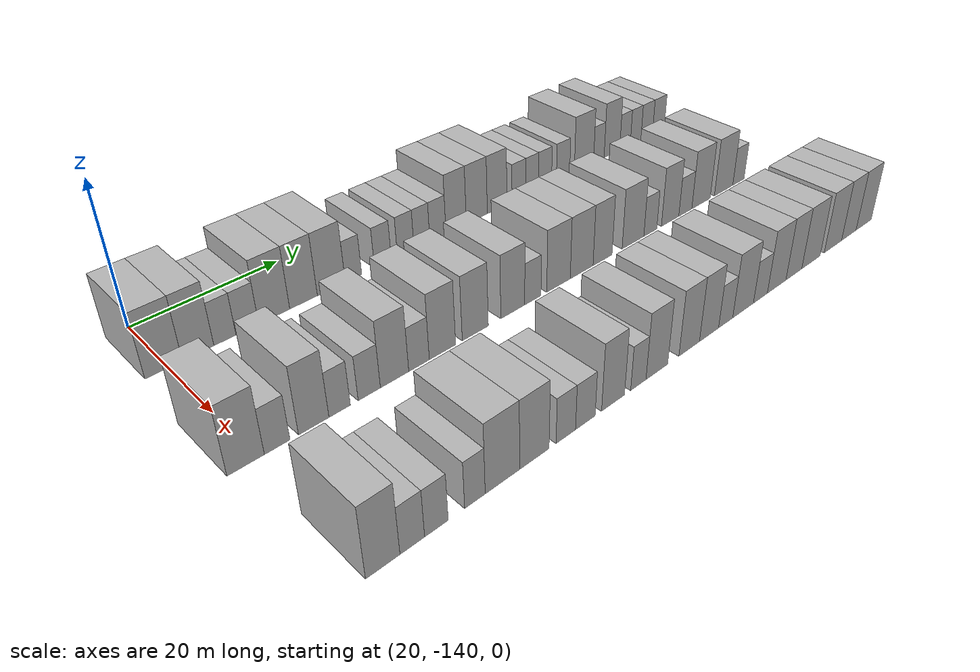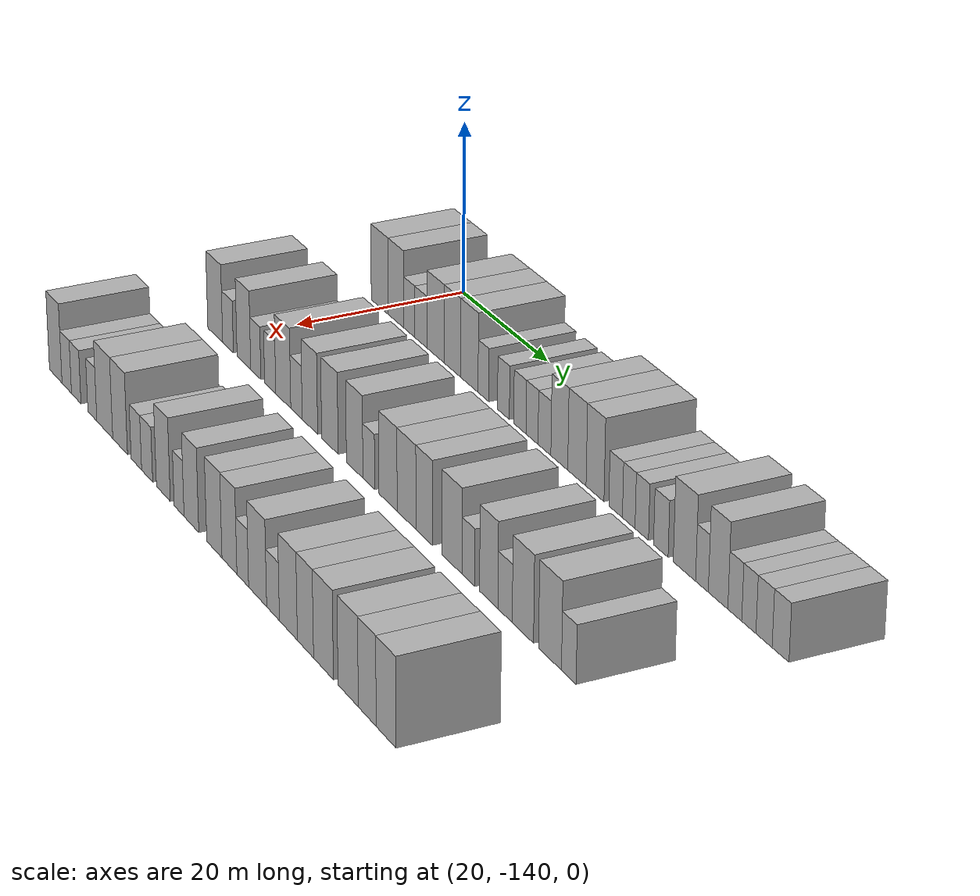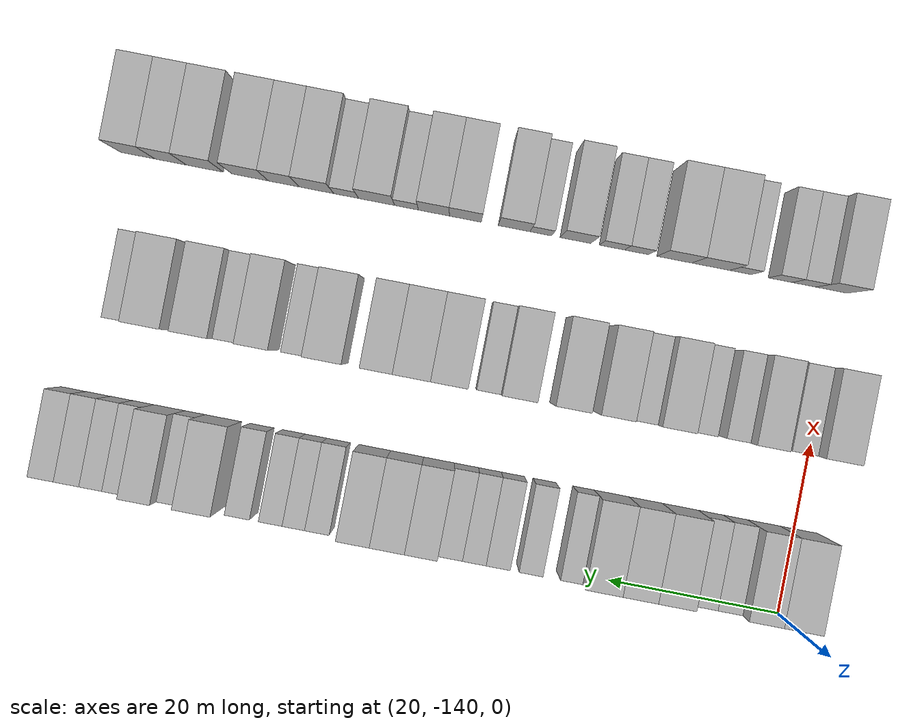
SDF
<sdf version="1.6">
 <world name="default">
  <model name="building_24">
   <static>1</static>
   <pose>25.0000 -140.4997 0 0.000000 0.000000 0.000000</pose>
   <link name="link">
    <pose>0 0 4.50 0 0 0</pose>
    <collision name="collision"><geometry><box><size>10.0000 4.4178 9.0000</size></box></geometry></collision>
    <visual name="visual">
     <cast_shadows>0</cast_shadows>
     <geometry><box><size>10.0000 4.4178 9.0000</size></box></geometry>
     <material>
      <script>
       <uri>model://HANNAS_wall/materials/scripts</uri>
       <uri>model://HANNAS_wall/materials/textures</uri>
       <name>vrc/HANNAS_wall</name>
      </script>
     </material>
    </visual>
   </link>
  </model>
  <model name="building_25">
   <static>1</static>
   <pose>25.0000 -136.3482 0 0.000000 0.000000 0.000000</pose>
   <link name="link">
    <pose>0 0 4.50 0 0 0</pose>
    <collision name="collision"><geometry><box><size>10.0000 3.8852 9.0000</size></box></geometry></collision>
    <visual name="visual">
     <cast_shadows>0</cast_shadows>
     <geometry><box><size>10.0000 3.8852 9.0000</size></box></geometry>
     <material>
      <script>
       <uri>model://HANNAS_wall/materials/scripts</uri>
       <uri>model://HANNAS_wall/materials/textures</uri>
       <name>vrc/HANNAS_wall</name>
      </script>
     </material>
    </visual>
   </link>
  </model>
  <model name="building_26">
   <static>1</static>
   <pose>25.0000 -132.9980 0 0.000000 0.000000 0.000000</pose>
   <link name="link">
    <pose>0 0 3.00 0 0 0</pose>
    <collision name="collision"><geometry><box><size>10.0000 2.8153 6.0000</size></box></geometry></collision>
    <visual name="visual">
     <cast_shadows>0</cast_shadows>
     <geometry><box><size>10.0000 2.8153 6.0000</size></box></geometry>
     <material>
      <script>
       <uri>model://HANNAS_wall/materials/scripts</uri>
       <uri>model://HANNAS_wall/materials/textures</uri>
       <name>vrc/HANNAS_wall</name>
      </script>
     </material>
    </visual>
   </link>
  </model>
  <model name="building_27">
   <static>1</static>
   <pose>25.0000 -130.0991 0 0.000000 0.000000 0.000000</pose>
   <link name="link">
    <pose>0 0 3.00 0 0 0</pose>
    <collision name="collision"><geometry><box><size>10.0000 2.9823 6.0000</size></box></geometry></collision>
    <visual name="visual">
     <cast_shadows>0</cast_shadows>
     <geometry><box><size>10.0000 2.9823 6.0000</size></box></geometry>
     <material>
      <script>
       <uri>model://HANNAS_wall/materials/scripts</uri>
       <uri>model://HANNAS_wall/materials/textures</uri>
       <name>vrc/HANNAS_wall</name>
      </script>
     </material>
    </visual>
   </link>
  </model>
  <model name="building_28">
   <static>1</static>
   <pose>25.0000 -126.4854 0 0.000000 0.000000 0.000000</pose>
   <link name="link">
    <pose>0 0 4.50 0 0 0</pose>
    <collision name="collision"><geometry><box><size>10.0000 4.2451 9.0000</size></box></geometry></collision>
    <visual name="visual">
     <cast_shadows>0</cast_shadows>
     <geometry><box><size>10.0000 4.2451 9.0000</size></box></geometry>
     <material>
      <script>
       <uri>model://HANNAS_wall/materials/scripts</uri>
       <uri>model://HANNAS_wall/materials/textures</uri>
       <name>vrc/HANNAS_wall</name>
      </script>
     </material>
    </visual>
   </link>
  </model>
  <model name="building_29">
   <static>1</static>
   <pose>25.0000 -122.3952 0 0.000000 0.000000 0.000000</pose>
   <link name="link">
    <pose>0 0 4.50 0 0 0</pose>
    <collision name="collision"><geometry><box><size>10.0000 3.9354 9.0000</size></box></geometry></collision>
    <visual name="visual">
     <cast_shadows>0</cast_shadows>
     <geometry><box><size>10.0000 3.9354 9.0000</size></box></geometry>
     <material>
      <script>
       <uri>model://HANNAS_wall/materials/scripts</uri>
       <uri>model://HANNAS_wall/materials/textures</uri>
       <name>vrc/HANNAS_wall</name>
      </script>
     </material>
    </visual>
   </link>
  </model>
  <model name="building_30">
   <static>1</static>
   <pose>25.0000 -118.3647 0 0.000000 0.000000 0.000000</pose>
   <link name="link">
    <pose>0 0 4.50 0 0 0</pose>
    <collision name="collision"><geometry><box><size>10.0000 4.1256 9.0000</size></box></geometry></collision>
    <visual name="visual">
     <cast_shadows>0</cast_shadows>
     <geometry><box><size>10.0000 4.1256 9.0000</size></box></geometry>
     <material>
      <script>
       <uri>model://HANNAS_wall/materials/scripts</uri>
       <uri>model://HANNAS_wall/materials/textures</uri>
       <name>vrc/HANNAS_wall</name>
      </script>
     </material>
    </visual>
   </link>
  </model>
  <model name="building_31">
   <static>1</static>
   <pose>25.0000 -115.0467 0 0.000000 0.000000 0.000000</pose>
   <link name="link">
    <pose>0 0 3.00 0 0 0</pose>
    <collision name="collision"><geometry><box><size>10.0000 2.5103 6.0000</size></box></geometry></collision>
    <visual name="visual">
     <cast_shadows>0</cast_shadows>
     <geometry><box><size>10.0000 2.5103 6.0000</size></box></geometry>
     <material>
      <script>
       <uri>model://HANNAS_wall/materials/scripts</uri>
       <uri>model://HANNAS_wall/materials/textures</uri>
       <name>vrc/HANNAS_wall</name>
      </script>
     </material>
    </visual>
   </link>
  </model>
  <model name="building_32">
   <static>1</static>
   <pose>25.0000 -110.4434 0 0.000000 0.000000 0.000000</pose>
   <link name="link">
    <pose>0 0 3.00 0 0 0</pose>
    <collision name="collision"><geometry><box><size>10.0000 2.6963 6.0000</size></box></geometry></collision>
    <visual name="visual">
     <cast_shadows>0</cast_shadows>
     <geometry><box><size>10.0000 2.6963 6.0000</size></box></geometry>
     <material>
      <script>
       <uri>model://HANNAS_wall/materials/scripts</uri>
       <uri>model://HANNAS_wall/materials/textures</uri>
       <name>vrc/HANNAS_wall</name>
      </script>
     </material>
    </visual>
   </link>
  </model>
  <model name="building_33">
   <static>1</static>
   <pose>25.0000 -106.7267 0 0.000000 0.000000 0.000000</pose>
   <link name="link">
    <pose>0 0 3.00 0 0 0</pose>
    <collision name="collision"><geometry><box><size>10.0000 2.7371 6.0000</size></box></geometry></collision>
    <visual name="visual">
     <cast_shadows>0</cast_shadows>
     <geometry><box><size>10.0000 2.7371 6.0000</size></box></geometry>
     <material>
      <script>
       <uri>model://HANNAS_wall/materials/scripts</uri>
       <uri>model://HANNAS_wall/materials/textures</uri>
       <name>vrc/HANNAS_wall</name>
      </script>
     </material>
    </visual>
   </link>
  </model>
  <model name="building_34">
   <static>1</static>
   <pose>25.0000 -104.0174 0 0.000000 0.000000 0.000000</pose>
   <link name="link">
    <pose>0 0 3.00 0 0 0</pose>
    <collision name="collision"><geometry><box><size>10.0000 2.6816 6.0000</size></box></geometry></collision>
    <visual name="visual">
     <cast_shadows>0</cast_shadows>
     <geometry><box><size>10.0000 2.6816 6.0000</size></box></geometry>
     <material>
      <script>
       <uri>model://HANNAS_wall/materials/scripts</uri>
       <uri>model://HANNAS_wall/materials/textures</uri>
       <name>vrc/HANNAS_wall</name>
      </script>
     </material>
    </visual>
   </link>
  </model>
  <model name="building_35">
   <static>1</static>
   <pose>25.0000 -101.2738 0 0.000000 0.000000 0.000000</pose>
   <link name="link">
    <pose>0 0 3.00 0 0 0</pose>
    <collision name="collision"><geometry><box><size>10.0000 2.8056 6.0000</size></box></geometry></collision>
    <visual name="visual">
     <cast_shadows>0</cast_shadows>
     <geometry><box><size>10.0000 2.8056 6.0000</size></box></geometry>
     <material>
      <script>
       <uri>model://HANNAS_wall/materials/scripts</uri>
       <uri>model://HANNAS_wall/materials/textures</uri>
       <name>vrc/HANNAS_wall</name>
      </script>
     </material>
    </visual>
   </link>
  </model>
  <model name="building_36">
   <static>1</static>
   <pose>25.0000 -98.0478 0 0.000000 0.000000 0.000000</pose>
   <link name="link">
    <pose>0 0 4.50 0 0 0</pose>
    <collision name="collision"><geometry><box><size>10.0000 3.6464 9.0000</size></box></geometry></collision>
    <visual name="visual">
     <cast_shadows>0</cast_shadows>
     <geometry><box><size>10.0000 3.6464 9.0000</size></box></geometry>
     <material>
      <script>
       <uri>model://HANNAS_wall/materials/scripts</uri>
       <uri>model://HANNAS_wall/materials/textures</uri>
       <name>vrc/HANNAS_wall</name>
      </script>
     </material>
    </visual>
   </link>
  </model>
  <model name="building_37">
   <static>1</static>
   <pose>25.0000 -94.2791 0 0.000000 0.000000 0.000000</pose>
   <link name="link">
    <pose>0 0 4.50 0 0 0</pose>
    <collision name="collision"><geometry><box><size>10.0000 3.8909 9.0000</size></box></geometry></collision>
    <visual name="visual">
     <cast_shadows>0</cast_shadows>
     <geometry><box><size>10.0000 3.8909 9.0000</size></box></geometry>
     <material>
      <script>
       <uri>model://HANNAS_wall/materials/scripts</uri>
       <uri>model://HANNAS_wall/materials/textures</uri>
       <name>vrc/HANNAS_wall</name>
      </script>
     </material>
    </visual>
   </link>
  </model>
  <model name="building_38">
   <static>1</static>
   <pose>25.0000 -90.4630 0 0.000000 0.000000 0.000000</pose>
   <link name="link">
    <pose>0 0 4.50 0 0 0</pose>
    <collision name="collision"><geometry><box><size>10.0000 3.7415 9.0000</size></box></geometry></collision>
    <visual name="visual">
     <cast_shadows>0</cast_shadows>
     <geometry><box><size>10.0000 3.7415 9.0000</size></box></geometry>
     <material>
      <script>
       <uri>model://HANNAS_wall/materials/scripts</uri>
       <uri>model://HANNAS_wall/materials/textures</uri>
       <name>vrc/HANNAS_wall</name>
      </script>
     </material>
    </visual>
   </link>
  </model>
  <model name="building_39">
   <static>1</static>
   <pose>25.0000 -86.2016 0 0.000000 0.000000 0.000000</pose>
   <link name="link">
    <pose>0 0 3.00 0 0 0</pose>
    <collision name="collision"><geometry><box><size>10.0000 2.7812 6.0000</size></box></geometry></collision>
    <visual name="visual">
     <cast_shadows>0</cast_shadows>
     <geometry><box><size>10.0000 2.7812 6.0000</size></box></geometry>
     <material>
      <script>
       <uri>model://HANNAS_wall/materials/scripts</uri>
       <uri>model://HANNAS_wall/materials/textures</uri>
       <name>vrc/HANNAS_wall</name>
      </script>
     </material>
    </visual>
   </link>
  </model>
  <model name="building_40">
   <static>1</static>
   <pose>25.0000 -83.5370 0 0.000000 0.000000 0.000000</pose>
   <link name="link">
    <pose>0 0 3.00 0 0 0</pose>
    <collision name="collision"><geometry><box><size>10.0000 2.5480 6.0000</size></box></geometry></collision>
    <visual name="visual">
     <cast_shadows>0</cast_shadows>
     <geometry><box><size>10.0000 2.5480 6.0000</size></box></geometry>
     <material>
      <script>
       <uri>model://HANNAS_wall/materials/scripts</uri>
       <uri>model://HANNAS_wall/materials/textures</uri>
       <name>vrc/HANNAS_wall</name>
      </script>
     </material>
    </visual>
   </link>
  </model>
  <model name="building_41">
   <static>1</static>
   <pose>25.0000 -80.9181 0 0.000000 0.000000 0.000000</pose>
   <link name="link">
    <pose>0 0 3.00 0 0 0</pose>
    <collision name="collision"><geometry><box><size>10.0000 2.6897 6.0000</size></box></geometry></collision>
    <visual name="visual">
     <cast_shadows>0</cast_shadows>
     <geometry><box><size>10.0000 2.6897 6.0000</size></box></geometry>
     <material>
      <script>
       <uri>model://HANNAS_wall/materials/scripts</uri>
       <uri>model://HANNAS_wall/materials/textures</uri>
       <name>vrc/HANNAS_wall</name>
      </script>
     </material>
    </visual>
   </link>
  </model>
  <model name="building_42">
   <static>1</static>
   <pose>25.0000 -77.1449 0 0.000000 0.000000 0.000000</pose>
   <link name="link">
    <pose>0 0 3.00 0 0 0</pose>
    <collision name="collision"><geometry><box><size>10.0000 2.8566 6.0000</size></box></geometry></collision>
    <visual name="visual">
     <cast_shadows>0</cast_shadows>
     <geometry><box><size>10.0000 2.8566 6.0000</size></box></geometry>
     <material>
      <script>
       <uri>model://HANNAS_wall/materials/scripts</uri>
       <uri>model://HANNAS_wall/materials/textures</uri>
       <name>vrc/HANNAS_wall</name>
      </script>
     </material>
    </visual>
   </link>
  </model>
  <model name="building_43">
   <static>1</static>
   <pose>25.0000 -72.5755 0 0.000000 0.000000 0.000000</pose>
   <link name="link">
    <pose>0 0 4.50 0 0 0</pose>
    <collision name="collision"><geometry><box><size>10.0000 4.2822 9.0000</size></box></geometry></collision>
    <visual name="visual">
     <cast_shadows>0</cast_shadows>
     <geometry><box><size>10.0000 4.2822 9.0000</size></box></geometry>
     <material>
      <script>
       <uri>model://HANNAS_wall/materials/scripts</uri>
       <uri>model://HANNAS_wall/materials/textures</uri>
       <name>vrc/HANNAS_wall</name>
      </script>
     </material>
    </visual>
   </link>
  </model>
  <model name="building_44">
   <static>1</static>
   <pose>25.0000 -69.2297 0 0.000000 0.000000 0.000000</pose>
   <link name="link">
    <pose>0 0 3.00 0 0 0</pose>
    <collision name="collision"><geometry><box><size>10.0000 2.4093 6.0000</size></box></geometry></collision>
    <visual name="visual">
     <cast_shadows>0</cast_shadows>
     <geometry><box><size>10.0000 2.4093 6.0000</size></box></geometry>
     <material>
      <script>
       <uri>model://HANNAS_wall/materials/scripts</uri>
       <uri>model://HANNAS_wall/materials/textures</uri>
       <name>vrc/HANNAS_wall</name>
      </script>
     </material>
    </visual>
   </link>
  </model>
  <model name="building_45">
   <static>1</static>
   <pose>25.0000 -66.2051 0 0.000000 0.000000 0.000000</pose>
   <link name="link">
    <pose>0 0 4.50 0 0 0</pose>
    <collision name="collision"><geometry><box><size>10.0000 3.6398 9.0000</size></box></geometry></collision>
    <visual name="visual">
     <cast_shadows>0</cast_shadows>
     <geometry><box><size>10.0000 3.6398 9.0000</size></box></geometry>
     <material>
      <script>
       <uri>model://HANNAS_wall/materials/scripts</uri>
       <uri>model://HANNAS_wall/materials/textures</uri>
       <name>vrc/HANNAS_wall</name>
      </script>
     </material>
    </visual>
   </link>
  </model>
  <model name="building_46">
   <static>1</static>
   <pose>25.0000 -63.1187 0 0.000000 0.000000 0.000000</pose>
   <link name="link">
    <pose>0 0 3.00 0 0 0</pose>
    <collision name="collision"><geometry><box><size>10.0000 2.5330 6.0000</size></box></geometry></collision>
    <visual name="visual">
     <cast_shadows>0</cast_shadows>
     <geometry><box><size>10.0000 2.5330 6.0000</size></box></geometry>
     <material>
      <script>
       <uri>model://HANNAS_wall/materials/scripts</uri>
       <uri>model://HANNAS_wall/materials/textures</uri>
       <name>vrc/HANNAS_wall</name>
      </script>
     </material>
    </visual>
   </link>
  </model>
  <model name="building_47">
   <static>1</static>
   <pose>25.0000 -60.5588 0 0.000000 0.000000 0.000000</pose>
   <link name="link">
    <pose>0 0 3.00 0 0 0</pose>
    <collision name="collision"><geometry><box><size>10.0000 2.5867 6.0000</size></box></geometry></collision>
    <visual name="visual">
     <cast_shadows>0</cast_shadows>
     <geometry><box><size>10.0000 2.5867 6.0000</size></box></geometry>
     <material>
      <script>
       <uri>model://HANNAS_wall/materials/scripts</uri>
       <uri>model://HANNAS_wall/materials/textures</uri>
       <name>vrc/HANNAS_wall</name>
      </script>
     </material>
    </visual>
   </link>
  </model>
  <model name="building_48">
   <static>1</static>
   <pose>25.0000 -57.8193 0 0.000000 0.000000 0.000000</pose>
   <link name="link">
    <pose>0 0 3.00 0 0 0</pose>
    <collision name="collision"><geometry><box><size>10.0000 2.8924 6.0000</size></box></geometry></collision>
    <visual name="visual">
     <cast_shadows>0</cast_shadows>
     <geometry><box><size>10.0000 2.8924 6.0000</size></box></geometry>
     <material>
      <script>
       <uri>model://HANNAS_wall/materials/scripts</uri>
       <uri>model://HANNAS_wall/materials/textures</uri>
       <name>vrc/HANNAS_wall</name>
      </script>
     </material>
    </visual>
   </link>
  </model>
  <model name="building_49">
   <static>1</static>
   <pose>25.0000 -54.8866 0 0.000000 0.000000 0.000000</pose>
   <link name="link">
    <pose>0 0 3.00 0 0 0</pose>
    <collision name="collision"><geometry><box><size>10.0000 2.9731 6.0000</size></box></geometry></collision>
    <visual name="visual">
     <cast_shadows>0</cast_shadows>
     <geometry><box><size>10.0000 2.9731 6.0000</size></box></geometry>
     <material>
      <script>
       <uri>model://HANNAS_wall/materials/scripts</uri>
       <uri>model://HANNAS_wall/materials/textures</uri>
       <name>vrc/HANNAS_wall</name>
      </script>
     </material>
    </visual>
   </link>
  </model>
  <model name="building_142">
   <static>1</static>
   <pose>44.0000 -141.3396 0 0.000000 0.000000 0.000000</pose>
   <link name="link">
    <pose>0 0 4.50 0 0 0</pose>
    <collision name="collision"><geometry><box><size>10.0000 4.1353 9.0000</size></box></geometry></collision>
    <visual name="visual">
     <cast_shadows>0</cast_shadows>
     <geometry><box><size>10.0000 4.1353 9.0000</size></box></geometry>
     <material>
      <script>
       <uri>model://HANNAS_wall/materials/scripts</uri>
       <uri>model://HANNAS_wall/materials/textures</uri>
       <name>vrc/HANNAS_wall</name>
      </script>
     </material>
    </visual>
   </link>
  </model>
  <model name="building_143">
   <static>1</static>
   <pose>44.0000 -137.7977 0 0.000000 0.000000 0.000000</pose>
   <link name="link">
    <pose>0 0 3.00 0 0 0</pose>
    <collision name="collision"><geometry><box><size>10.0000 2.9484 6.0000</size></box></geometry></collision>
    <visual name="visual">
     <cast_shadows>0</cast_shadows>
     <geometry><box><size>10.0000 2.9484 6.0000</size></box></geometry>
     <material>
      <script>
       <uri>model://HANNAS_wall/materials/scripts</uri>
       <uri>model://HANNAS_wall/materials/textures</uri>
       <name>vrc/HANNAS_wall</name>
      </script>
     </material>
    </visual>
   </link>
  </model>
  <model name="building_144">
   <static>1</static>
   <pose>44.0000 -133.4770 0 0.000000 0.000000 0.000000</pose>
   <link name="link">
    <pose>0 0 4.50 0 0 0</pose>
    <collision name="collision"><geometry><box><size>10.0000 3.6932 9.0000</size></box></geometry></collision>
    <visual name="visual">
     <cast_shadows>0</cast_shadows>
     <geometry><box><size>10.0000 3.6932 9.0000</size></box></geometry>
     <material>
      <script>
       <uri>model://HANNAS_wall/materials/scripts</uri>
       <uri>model://HANNAS_wall/materials/textures</uri>
       <name>vrc/HANNAS_wall</name>
      </script>
     </material>
    </visual>
   </link>
  </model>
  <model name="building_145">
   <static>1</static>
   <pose>44.0000 -130.2833 0 0.000000 0.000000 0.000000</pose>
   <link name="link">
    <pose>0 0 3.00 0 0 0</pose>
    <collision name="collision"><geometry><box><size>10.0000 2.6942 6.0000</size></box></geometry></collision>
    <visual name="visual">
     <cast_shadows>0</cast_shadows>
     <geometry><box><size>10.0000 2.6942 6.0000</size></box></geometry>
     <material>
      <script>
       <uri>model://HANNAS_wall/materials/scripts</uri>
       <uri>model://HANNAS_wall/materials/textures</uri>
       <name>vrc/HANNAS_wall</name>
      </script>
     </material>
    </visual>
   </link>
  </model>
  <model name="building_146">
   <static>1</static>
   <pose>44.0000 -126.4742 0 0.000000 0.000000 0.000000</pose>
   <link name="link">
    <pose>0 0 3.00 0 0 0</pose>
    <collision name="collision"><geometry><box><size>10.0000 2.9239 6.0000</size></box></geometry></collision>
    <visual name="visual">
     <cast_shadows>0</cast_shadows>
     <geometry><box><size>10.0000 2.9239 6.0000</size></box></geometry>
     <material>
      <script>
       <uri>model://HANNAS_wall/materials/scripts</uri>
       <uri>model://HANNAS_wall/materials/textures</uri>
       <name>vrc/HANNAS_wall</name>
      </script>
     </material>
    </visual>
   </link>
  </model>
  <model name="building_147">
   <static>1</static>
   <pose>44.0000 -123.0789 0 0.000000 0.000000 0.000000</pose>
   <link name="link">
    <pose>0 0 4.50 0 0 0</pose>
    <collision name="collision"><geometry><box><size>10.0000 3.8668 9.0000</size></box></geometry></collision>
    <visual name="visual">
     <cast_shadows>0</cast_shadows>
     <geometry><box><size>10.0000 3.8668 9.0000</size></box></geometry>
     <material>
      <script>
       <uri>model://HANNAS_wall/materials/scripts</uri>
       <uri>model://HANNAS_wall/materials/textures</uri>
       <name>vrc/HANNAS_wall</name>
      </script>
     </material>
    </visual>
   </link>
  </model>
  <model name="building_148">
   <static>1</static>
   <pose>44.0000 -119.6869 0 0.000000 0.000000 0.000000</pose>
   <link name="link">
    <pose>0 0 3.00 0 0 0</pose>
    <collision name="collision"><geometry><box><size>10.0000 2.9173 6.0000</size></box></geometry></collision>
    <visual name="visual">
     <cast_shadows>0</cast_shadows>
     <geometry><box><size>10.0000 2.9173 6.0000</size></box></geometry>
     <material>
      <script>
       <uri>model://HANNAS_wall/materials/scripts</uri>
       <uri>model://HANNAS_wall/materials/textures</uri>
       <name>vrc/HANNAS_wall</name>
      </script>
     </material>
    </visual>
   </link>
  </model>
  <model name="building_149">
   <static>1</static>
   <pose>44.0000 -116.2940 0 0.000000 0.000000 0.000000</pose>
   <link name="link">
    <pose>0 0 4.50 0 0 0</pose>
    <collision name="collision"><geometry><box><size>10.0000 3.8684 9.0000</size></box></geometry></collision>
    <visual name="visual">
     <cast_shadows>0</cast_shadows>
     <geometry><box><size>10.0000 3.8684 9.0000</size></box></geometry>
     <material>
      <script>
       <uri>model://HANNAS_wall/materials/scripts</uri>
       <uri>model://HANNAS_wall/materials/textures</uri>
       <name>vrc/HANNAS_wall</name>
      </script>
     </material>
    </visual>
   </link>
  </model>
  <model name="building_150">
   <static>1</static>
   <pose>44.0000 -111.3414 0 0.000000 0.000000 0.000000</pose>
   <link name="link">
    <pose>0 0 4.50 0 0 0</pose>
    <collision name="collision"><geometry><box><size>10.0000 4.0368 9.0000</size></box></geometry></collision>
    <visual name="visual">
     <cast_shadows>0</cast_shadows>
     <geometry><box><size>10.0000 4.0368 9.0000</size></box></geometry>
     <material>
      <script>
       <uri>model://HANNAS_wall/materials/scripts</uri>
       <uri>model://HANNAS_wall/materials/textures</uri>
       <name>vrc/HANNAS_wall</name>
      </script>
     </material>
    </visual>
   </link>
  </model>
  <model name="building_151">
   <static>1</static>
   <pose>44.0000 -105.3486 0 0.000000 0.000000 0.000000</pose>
   <link name="link">
    <pose>0 0 4.50 0 0 0</pose>
    <collision name="collision"><geometry><box><size>10.0000 3.9489 9.0000</size></box></geometry></collision>
    <visual name="visual">
     <cast_shadows>0</cast_shadows>
     <geometry><box><size>10.0000 3.9489 9.0000</size></box></geometry>
     <material>
      <script>
       <uri>model://HANNAS_wall/materials/scripts</uri>
       <uri>model://HANNAS_wall/materials/textures</uri>
       <name>vrc/HANNAS_wall</name>
      </script>
     </material>
    </visual>
   </link>
  </model>
  <model name="building_152">
   <static>1</static>
   <pose>44.0000 -101.9927 0 0.000000 0.000000 0.000000</pose>
   <link name="link">
    <pose>0 0 3.00 0 0 0</pose>
    <collision name="collision"><geometry><box><size>10.0000 2.7629 6.0000</size></box></geometry></collision>
    <visual name="visual">
     <cast_shadows>0</cast_shadows>
     <geometry><box><size>10.0000 2.7629 6.0000</size></box></geometry>
     <material>
      <script>
       <uri>model://HANNAS_wall/materials/scripts</uri>
       <uri>model://HANNAS_wall/materials/textures</uri>
       <name>vrc/HANNAS_wall</name>
      </script>
     </material>
    </visual>
   </link>
  </model>
  <model name="building_153">
   <static>1</static>
   <pose>44.0000 -97.5168 0 0.000000 0.000000 0.000000</pose>
   <link name="link">
    <pose>0 0 4.50 0 0 0</pose>
    <collision name="collision"><geometry><box><size>10.0000 4.1889 9.0000</size></box></geometry></collision>
    <visual name="visual">
     <cast_shadows>0</cast_shadows>
     <geometry><box><size>10.0000 4.1889 9.0000</size></box></geometry>
     <material>
      <script>
       <uri>model://HANNAS_wall/materials/scripts</uri>
       <uri>model://HANNAS_wall/materials/textures</uri>
       <name>vrc/HANNAS_wall</name>
      </script>
     </material>
    </visual>
   </link>
  </model>
  <model name="building_154">
   <static>1</static>
   <pose>44.0000 -93.3029 0 0.000000 0.000000 0.000000</pose>
   <link name="link">
    <pose>0 0 4.50 0 0 0</pose>
    <collision name="collision"><geometry><box><size>10.0000 4.2390 9.0000</size></box></geometry></collision>
    <visual name="visual">
     <cast_shadows>0</cast_shadows>
     <geometry><box><size>10.0000 4.2390 9.0000</size></box></geometry>
     <material>
      <script>
       <uri>model://HANNAS_wall/materials/scripts</uri>
       <uri>model://HANNAS_wall/materials/textures</uri>
       <name>vrc/HANNAS_wall</name>
      </script>
     </material>
    </visual>
   </link>
  </model>
  <model name="building_155">
   <static>1</static>
   <pose>44.0000 -89.3568 0 0.000000 0.000000 0.000000</pose>
   <link name="link">
    <pose>0 0 4.50 0 0 0</pose>
    <collision name="collision"><geometry><box><size>10.0000 3.6531 9.0000</size></box></geometry></collision>
    <visual name="visual">
     <cast_shadows>0</cast_shadows>
     <geometry><box><size>10.0000 3.6531 9.0000</size></box></geometry>
     <material>
      <script>
       <uri>model://HANNAS_wall/materials/scripts</uri>
       <uri>model://HANNAS_wall/materials/textures</uri>
       <name>vrc/HANNAS_wall</name>
      </script>
     </material>
    </visual>
   </link>
  </model>
  <model name="building_156">
   <static>1</static>
   <pose>44.0000 -83.3207 0 0.000000 0.000000 0.000000</pose>
   <link name="link">
    <pose>0 0 4.50 0 0 0</pose>
    <collision name="collision"><geometry><box><size>10.0000 4.4190 9.0000</size></box></geometry></collision>
    <visual name="visual">
     <cast_shadows>0</cast_shadows>
     <geometry><box><size>10.0000 4.4190 9.0000</size></box></geometry>
     <material>
      <script>
       <uri>model://HANNAS_wall/materials/scripts</uri>
       <uri>model://HANNAS_wall/materials/textures</uri>
       <name>vrc/HANNAS_wall</name>
      </script>
     </material>
    </visual>
   </link>
  </model>
  <model name="building_157">
   <static>1</static>
   <pose>44.0000 -79.7532 0 0.000000 0.000000 0.000000</pose>
   <link name="link">
    <pose>0 0 3.00 0 0 0</pose>
    <collision name="collision"><geometry><box><size>10.0000 2.7160 6.0000</size></box></geometry></collision>
    <visual name="visual">
     <cast_shadows>0</cast_shadows>
     <geometry><box><size>10.0000 2.7160 6.0000</size></box></geometry>
     <material>
      <script>
       <uri>model://HANNAS_wall/materials/scripts</uri>
       <uri>model://HANNAS_wall/materials/textures</uri>
       <name>vrc/HANNAS_wall</name>
      </script>
     </material>
    </visual>
   </link>
  </model>
  <model name="building_158">
   <static>1</static>
   <pose>44.0000 -75.4937 0 0.000000 0.000000 0.000000</pose>
   <link name="link">
    <pose>0 0 4.50 0 0 0</pose>
    <collision name="collision"><geometry><box><size>10.0000 3.8029 9.0000</size></box></geometry></collision>
    <visual name="visual">
     <cast_shadows>0</cast_shadows>
     <geometry><box><size>10.0000 3.8029 9.0000</size></box></geometry>
     <material>
      <script>
       <uri>model://HANNAS_wall/materials/scripts</uri>
       <uri>model://HANNAS_wall/materials/textures</uri>
       <name>vrc/HANNAS_wall</name>
      </script>
     </material>
    </visual>
   </link>
  </model>
  <model name="building_159">
   <static>1</static>
   <pose>44.0000 -72.1260 0 0.000000 0.000000 0.000000</pose>
   <link name="link">
    <pose>0 0 3.00 0 0 0</pose>
    <collision name="collision"><geometry><box><size>10.0000 2.9324 6.0000</size></box></geometry></collision>
    <visual name="visual">
     <cast_shadows>0</cast_shadows>
     <geometry><box><size>10.0000 2.9324 6.0000</size></box></geometry>
     <material>
      <script>
       <uri>model://HANNAS_wall/materials/scripts</uri>
       <uri>model://HANNAS_wall/materials/textures</uri>
       <name>vrc/HANNAS_wall</name>
      </script>
     </material>
    </visual>
   </link>
  </model>
  <model name="building_160">
   <static>1</static>
   <pose>44.0000 -68.5255 0 0.000000 0.000000 0.000000</pose>
   <link name="link">
    <pose>0 0 4.50 0 0 0</pose>
    <collision name="collision"><geometry><box><size>10.0000 4.2687 9.0000</size></box></geometry></collision>
    <visual name="visual">
     <cast_shadows>0</cast_shadows>
     <geometry><box><size>10.0000 4.2687 9.0000</size></box></geometry>
     <material>
      <script>
       <uri>model://HANNAS_wall/materials/scripts</uri>
       <uri>model://HANNAS_wall/materials/textures</uri>
       <name>vrc/HANNAS_wall</name>
      </script>
     </material>
    </visual>
   </link>
  </model>
  <model name="building_161">
   <static>1</static>
   <pose>44.0000 -63.1510 0 0.000000 0.000000 0.000000</pose>
   <link name="link">
    <pose>0 0 4.50 0 0 0</pose>
    <collision name="collision"><geometry><box><size>10.0000 4.4802 9.0000</size></box></geometry></collision>
    <visual name="visual">
     <cast_shadows>0</cast_shadows>
     <geometry><box><size>10.0000 4.4802 9.0000</size></box></geometry>
     <material>
      <script>
       <uri>model://HANNAS_wall/materials/scripts</uri>
       <uri>model://HANNAS_wall/materials/textures</uri>
       <name>vrc/HANNAS_wall</name>
      </script>
     </material>
    </visual>
   </link>
  </model>
  <model name="building_162">
   <static>1</static>
   <pose>44.0000 -59.5054 0 0.000000 0.000000 0.000000</pose>
   <link name="link">
    <pose>0 0 3.00 0 0 0</pose>
    <collision name="collision"><geometry><box><size>10.0000 2.8110 6.0000</size></box></geometry></collision>
    <visual name="visual">
     <cast_shadows>0</cast_shadows>
     <geometry><box><size>10.0000 2.8110 6.0000</size></box></geometry>
     <material>
      <script>
       <uri>model://HANNAS_wall/materials/scripts</uri>
       <uri>model://HANNAS_wall/materials/textures</uri>
       <name>vrc/HANNAS_wall</name>
      </script>
     </material>
    </visual>
   </link>
  </model>
  <model name="building_254">
   <static>1</static>
   <pose>63.0000 -138.9043 0 0.000000 0.000000 0.000000</pose>
   <link name="link">
    <pose>0 0 4.50 0 0 0</pose>
    <collision name="collision"><geometry><box><size>10.0000 3.7473 9.0000</size></box></geometry></collision>
    <visual name="visual">
     <cast_shadows>0</cast_shadows>
     <geometry><box><size>10.0000 3.7473 9.0000</size></box></geometry>
     <material>
      <script>
       <uri>model://HANNAS_wall/materials/scripts</uri>
       <uri>model://HANNAS_wall/materials/textures</uri>
       <name>vrc/HANNAS_wall</name>
      </script>
     </material>
    </visual>
   </link>
  </model>
  <model name="building_255">
   <static>1</static>
   <pose>63.0000 -135.6317 0 0.000000 0.000000 0.000000</pose>
   <link name="link">
    <pose>0 0 3.00 0 0 0</pose>
    <collision name="collision"><geometry><box><size>10.0000 2.7979 6.0000</size></box></geometry></collision>
    <visual name="visual">
     <cast_shadows>0</cast_shadows>
     <geometry><box><size>10.0000 2.7979 6.0000</size></box></geometry>
     <material>
      <script>
       <uri>model://HANNAS_wall/materials/scripts</uri>
       <uri>model://HANNAS_wall/materials/textures</uri>
       <name>vrc/HANNAS_wall</name>
      </script>
     </material>
    </visual>
   </link>
  </model>
  <model name="building_256">
   <static>1</static>
   <pose>63.0000 -132.8461 0 0.000000 0.000000 0.000000</pose>
   <link name="link">
    <pose>0 0 3.00 0 0 0</pose>
    <collision name="collision"><geometry><box><size>10.0000 2.7733 6.0000</size></box></geometry></collision>
    <visual name="visual">
     <cast_shadows>0</cast_shadows>
     <geometry><box><size>10.0000 2.7733 6.0000</size></box></geometry>
     <material>
      <script>
       <uri>model://HANNAS_wall/materials/scripts</uri>
       <uri>model://HANNAS_wall/materials/textures</uri>
       <name>vrc/HANNAS_wall</name>
      </script>
     </material>
    </visual>
   </link>
  </model>
  <model name="building_257">
   <static>1</static>
   <pose>63.0000 -128.1719 0 0.000000 0.000000 0.000000</pose>
   <link name="link">
    <pose>0 0 3.00 0 0 0</pose>
    <collision name="collision"><geometry><box><size>10.0000 2.5751 6.0000</size></box></geometry></collision>
    <visual name="visual">
     <cast_shadows>0</cast_shadows>
     <geometry><box><size>10.0000 2.5751 6.0000</size></box></geometry>
     <material>
      <script>
       <uri>model://HANNAS_wall/materials/scripts</uri>
       <uri>model://HANNAS_wall/materials/textures</uri>
       <name>vrc/HANNAS_wall</name>
      </script>
     </material>
    </visual>
   </link>
  </model>
  <model name="building_258">
   <static>1</static>
   <pose>63.0000 -124.6372 0 0.000000 0.000000 0.000000</pose>
   <link name="link">
    <pose>0 0 4.50 0 0 0</pose>
    <collision name="collision"><geometry><box><size>10.0000 4.4943 9.0000</size></box></geometry></collision>
    <visual name="visual">
     <cast_shadows>0</cast_shadows>
     <geometry><box><size>10.0000 4.4943 9.0000</size></box></geometry>
     <material>
      <script>
       <uri>model://HANNAS_wall/materials/scripts</uri>
       <uri>model://HANNAS_wall/materials/textures</uri>
       <name>vrc/HANNAS_wall</name>
      </script>
     </material>
    </visual>
   </link>
  </model>
  <model name="building_259">
   <static>1</static>
   <pose>63.0000 -120.3495 0 0.000000 0.000000 0.000000</pose>
   <link name="link">
    <pose>0 0 4.50 0 0 0</pose>
    <collision name="collision"><geometry><box><size>10.0000 4.0811 9.0000</size></box></geometry></collision>
    <visual name="visual">
     <cast_shadows>0</cast_shadows>
     <geometry><box><size>10.0000 4.0811 9.0000</size></box></geometry>
     <material>
      <script>
       <uri>model://HANNAS_wall/materials/scripts</uri>
       <uri>model://HANNAS_wall/materials/textures</uri>
       <name>vrc/HANNAS_wall</name>
      </script>
     </material>
    </visual>
   </link>
  </model>
  <model name="building_260">
   <static>1</static>
   <pose>63.0000 -115.8892 0 0.000000 0.000000 0.000000</pose>
   <link name="link">
    <pose>0 0 3.00 0 0 0</pose>
    <collision name="collision"><geometry><box><size>10.0000 2.8395 6.0000</size></box></geometry></collision>
    <visual name="visual">
     <cast_shadows>0</cast_shadows>
     <geometry><box><size>10.0000 2.8395 6.0000</size></box></geometry>
     <material>
      <script>
       <uri>model://HANNAS_wall/materials/scripts</uri>
       <uri>model://HANNAS_wall/materials/textures</uri>
       <name>vrc/HANNAS_wall</name>
      </script>
     </material>
    </visual>
   </link>
  </model>
  <model name="building_261">
   <static>1</static>
   <pose>63.0000 -112.9886 0 0.000000 0.000000 0.000000</pose>
   <link name="link">
    <pose>0 0 3.00 0 0 0</pose>
    <collision name="collision"><geometry><box><size>10.0000 2.9617 6.0000</size></box></geometry></collision>
    <visual name="visual">
     <cast_shadows>0</cast_shadows>
     <geometry><box><size>10.0000 2.9617 6.0000</size></box></geometry>
     <material>
      <script>
       <uri>model://HANNAS_wall/materials/scripts</uri>
       <uri>model://HANNAS_wall/materials/textures</uri>
       <name>vrc/HANNAS_wall</name>
      </script>
     </material>
    </visual>
   </link>
  </model>
  <model name="building_262">
   <static>1</static>
   <pose>63.0000 -108.6852 0 0.000000 0.000000 0.000000</pose>
   <link name="link">
    <pose>0 0 4.50 0 0 0</pose>
    <collision name="collision"><geometry><box><size>10.0000 3.6450 9.0000</size></box></geometry></collision>
    <visual name="visual">
     <cast_shadows>0</cast_shadows>
     <geometry><box><size>10.0000 3.6450 9.0000</size></box></geometry>
     <material>
      <script>
       <uri>model://HANNAS_wall/materials/scripts</uri>
       <uri>model://HANNAS_wall/materials/textures</uri>
       <name>vrc/HANNAS_wall</name>
      </script>
     </material>
    </visual>
   </link>
  </model>
  <model name="building_263">
   <static>1</static>
   <pose>63.0000 -104.5884 0 0.000000 0.000000 0.000000</pose>
   <link name="link">
    <pose>0 0 3.00 0 0 0</pose>
    <collision name="collision"><geometry><box><size>10.0000 2.5487 6.0000</size></box></geometry></collision>
    <visual name="visual">
     <cast_shadows>0</cast_shadows>
     <geometry><box><size>10.0000 2.5487 6.0000</size></box></geometry>
     <material>
      <script>
       <uri>model://HANNAS_wall/materials/scripts</uri>
       <uri>model://HANNAS_wall/materials/textures</uri>
       <name>vrc/HANNAS_wall</name>
      </script>
     </material>
    </visual>
   </link>
  </model>
  <model name="building_264">
   <static>1</static>
   <pose>63.0000 -101.4432 0 0.000000 0.000000 0.000000</pose>
   <link name="link">
    <pose>0 0 4.50 0 0 0</pose>
    <collision name="collision"><geometry><box><size>10.0000 3.7418 9.0000</size></box></geometry></collision>
    <visual name="visual">
     <cast_shadows>0</cast_shadows>
     <geometry><box><size>10.0000 3.7418 9.0000</size></box></geometry>
     <material>
      <script>
       <uri>model://HANNAS_wall/materials/scripts</uri>
       <uri>model://HANNAS_wall/materials/textures</uri>
       <name>vrc/HANNAS_wall</name>
      </script>
     </material>
    </visual>
   </link>
  </model>
  <model name="building_265">
   <static>1</static>
   <pose>63.0000 -95.6908 0 0.000000 0.000000 0.000000</pose>
   <link name="link">
    <pose>0 0 4.50 0 0 0</pose>
    <collision name="collision"><geometry><box><size>10.0000 3.7628 9.0000</size></box></geometry></collision>
    <visual name="visual">
     <cast_shadows>0</cast_shadows>
     <geometry><box><size>10.0000 3.7628 9.0000</size></box></geometry>
     <material>
      <script>
       <uri>model://HANNAS_wall/materials/scripts</uri>
       <uri>model://HANNAS_wall/materials/textures</uri>
       <name>vrc/HANNAS_wall</name>
      </script>
     </material>
    </visual>
   </link>
  </model>
  <model name="building_266">
   <static>1</static>
   <pose>63.0000 -91.9863 0 0.000000 0.000000 0.000000</pose>
   <link name="link">
    <pose>0 0 4.50 0 0 0</pose>
    <collision name="collision"><geometry><box><size>10.0000 3.6464 9.0000</size></box></geometry></collision>
    <visual name="visual">
     <cast_shadows>0</cast_shadows>
     <geometry><box><size>10.0000 3.6464 9.0000</size></box></geometry>
     <material>
      <script>
       <uri>model://HANNAS_wall/materials/scripts</uri>
       <uri>model://HANNAS_wall/materials/textures</uri>
       <name>vrc/HANNAS_wall</name>
      </script>
     </material>
    </visual>
   </link>
  </model>
  <model name="building_267">
   <static>1</static>
   <pose>63.0000 -88.7654 0 0.000000 0.000000 0.000000</pose>
   <link name="link">
    <pose>0 0 3.00 0 0 0</pose>
    <collision name="collision"><geometry><box><size>10.0000 2.7954 6.0000</size></box></geometry></collision>
    <visual name="visual">
     <cast_shadows>0</cast_shadows>
     <geometry><box><size>10.0000 2.7954 6.0000</size></box></geometry>
     <material>
      <script>
       <uri>model://HANNAS_wall/materials/scripts</uri>
       <uri>model://HANNAS_wall/materials/textures</uri>
       <name>vrc/HANNAS_wall</name>
      </script>
     </material>
    </visual>
   </link>
  </model>
  <model name="building_268">
   <static>1</static>
   <pose>63.0000 -85.2446 0 0.000000 0.000000 0.000000</pose>
   <link name="link">
    <pose>0 0 4.50 0 0 0</pose>
    <collision name="collision"><geometry><box><size>10.0000 4.2461 9.0000</size></box></geometry></collision>
    <visual name="visual">
     <cast_shadows>0</cast_shadows>
     <geometry><box><size>10.0000 4.2461 9.0000</size></box></geometry>
     <material>
      <script>
       <uri>model://HANNAS_wall/materials/scripts</uri>
       <uri>model://HANNAS_wall/materials/textures</uri>
       <name>vrc/HANNAS_wall</name>
      </script>
     </material>
    </visual>
   </link>
  </model>
  <model name="building_269">
   <static>1</static>
   <pose>63.0000 -81.6474 0 0.000000 0.000000 0.000000</pose>
   <link name="link">
    <pose>0 0 3.00 0 0 0</pose>
    <collision name="collision"><geometry><box><size>10.0000 2.9483 6.0000</size></box></geometry></collision>
    <visual name="visual">
     <cast_shadows>0</cast_shadows>
     <geometry><box><size>10.0000 2.9483 6.0000</size></box></geometry>
     <material>
      <script>
       <uri>model://HANNAS_wall/materials/scripts</uri>
       <uri>model://HANNAS_wall/materials/textures</uri>
       <name>vrc/HANNAS_wall</name>
      </script>
     </material>
    </visual>
   </link>
  </model>
  <model name="building_270">
   <static>1</static>
   <pose>63.0000 -78.1308 0 0.000000 0.000000 0.000000</pose>
   <link name="link">
    <pose>0 0 4.50 0 0 0</pose>
    <collision name="collision"><geometry><box><size>10.0000 4.0850 9.0000</size></box></geometry></collision>
    <visual name="visual">
     <cast_shadows>0</cast_shadows>
     <geometry><box><size>10.0000 4.0850 9.0000</size></box></geometry>
     <material>
      <script>
       <uri>model://HANNAS_wall/materials/scripts</uri>
       <uri>model://HANNAS_wall/materials/textures</uri>
       <name>vrc/HANNAS_wall</name>
      </script>
     </material>
    </visual>
   </link>
  </model>
  <model name="building_271">
   <static>1</static>
   <pose>63.0000 -74.2849 0 0.000000 0.000000 0.000000</pose>
   <link name="link">
    <pose>0 0 4.50 0 0 0</pose>
    <collision name="collision"><geometry><box><size>10.0000 3.6068 9.0000</size></box></geometry></collision>
    <visual name="visual">
     <cast_shadows>0</cast_shadows>
     <geometry><box><size>10.0000 3.6068 9.0000</size></box></geometry>
     <material>
      <script>
       <uri>model://HANNAS_wall/materials/scripts</uri>
       <uri>model://HANNAS_wall/materials/textures</uri>
       <name>vrc/HANNAS_wall</name>
      </script>
     </material>
    </visual>
   </link>
  </model>
  <model name="building_272">
   <static>1</static>
   <pose>63.0000 -70.3093 0 0.000000 0.000000 0.000000</pose>
   <link name="link">
    <pose>0 0 4.50 0 0 0</pose>
    <collision name="collision"><geometry><box><size>10.0000 4.3444 9.0000</size></box></geometry></collision>
    <visual name="visual">
     <cast_shadows>0</cast_shadows>
     <geometry><box><size>10.0000 4.3444 9.0000</size></box></geometry>
     <material>
      <script>
       <uri>model://HANNAS_wall/materials/scripts</uri>
       <uri>model://HANNAS_wall/materials/textures</uri>
       <name>vrc/HANNAS_wall</name>
      </script>
     </material>
    </visual>
   </link>
  </model>
  <model name="building_273">
   <static>1</static>
   <pose>63.0000 -64.9792 0 0.000000 0.000000 0.000000</pose>
   <link name="link">
    <pose>0 0 4.50 0 0 0</pose>
    <collision name="collision"><geometry><box><size>10.0000 4.3157 9.0000</size></box></geometry></collision>
    <visual name="visual">
     <cast_shadows>0</cast_shadows>
     <geometry><box><size>10.0000 4.3157 9.0000</size></box></geometry>
     <material>
      <script>
       <uri>model://HANNAS_wall/materials/scripts</uri>
       <uri>model://HANNAS_wall/materials/textures</uri>
       <name>vrc/HANNAS_wall</name>
      </script>
     </material>
    </visual>
   </link>
  </model>
  <model name="building_274">
   <static>1</static>
   <pose>63.0000 -60.9510 0 0.000000 0.000000 0.000000</pose>
   <link name="link">
    <pose>0 0 4.50 0 0 0</pose>
    <collision name="collision"><geometry><box><size>10.0000 3.7407 9.0000</size></box></geometry></collision>
    <visual name="visual">
     <cast_shadows>0</cast_shadows>
     <geometry><box><size>10.0000 3.7407 9.0000</size></box></geometry>
     <material>
      <script>
       <uri>model://HANNAS_wall/materials/scripts</uri>
       <uri>model://HANNAS_wall/materials/textures</uri>
       <name>vrc/HANNAS_wall</name>
      </script>
     </material>
    </visual>
   </link>
  </model>
  <model name="building_275">
   <static>1</static>
   <pose>63.0000 -57.0568 0 0.000000 0.000000 0.000000</pose>
   <link name="link">
    <pose>0 0 4.50 0 0 0</pose>
    <collision name="collision"><geometry><box><size>10.0000 4.0478 9.0000</size></box></geometry></collision>
    <visual name="visual">
     <cast_shadows>0</cast_shadows>
     <geometry><box><size>10.0000 4.0478 9.0000</size></box></geometry>
     <material>
      <script>
       <uri>model://HANNAS_wall/materials/scripts</uri>
       <uri>model://HANNAS_wall/materials/textures</uri>
       <name>vrc/HANNAS_wall</name>
      </script>
     </material>
    </visual>
   </link>
  </model>
 </world>
</sdf>
